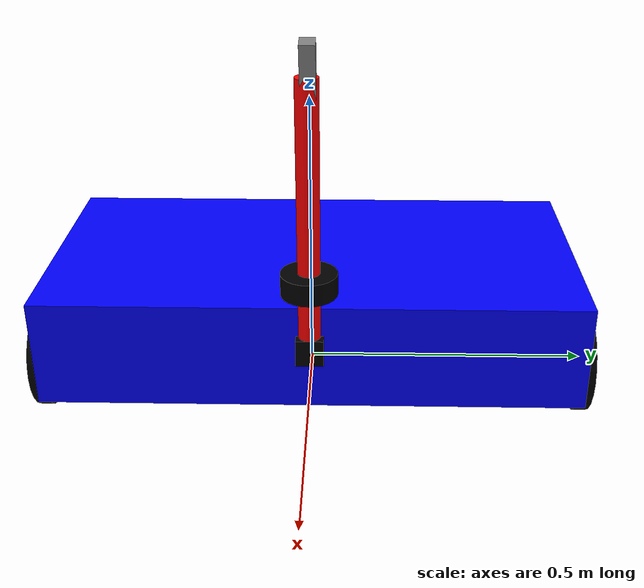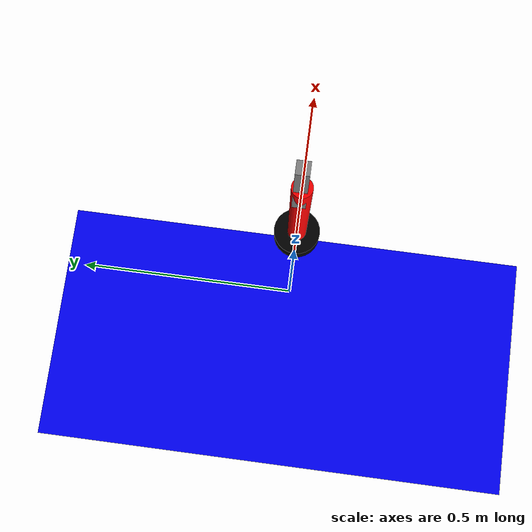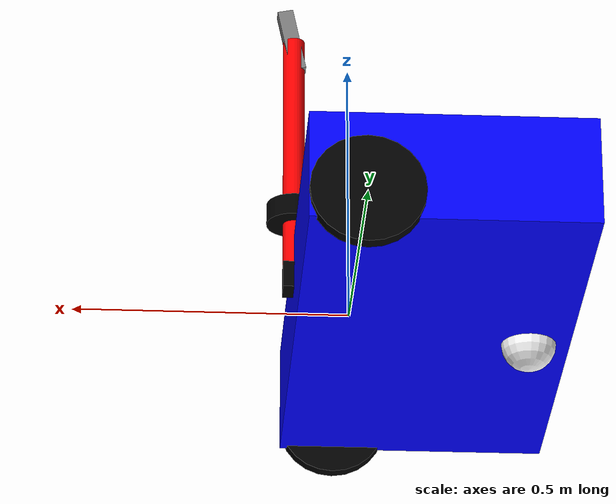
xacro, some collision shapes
<?xml version="1.0" ?>
<robot name='robot' xmlns:xacro="http://ros.org/wiki/xacro">

    <xacro:include filename="$(find robot_description)/urdf/gazebo.urdf.xacro" />
    <xacro:include filename="$(find robot_description)/urdf/lidar.urdf.xacro" />
    <xacro:include filename="$(find robot_description)/urdf/depth.urdf.xacro" />
    <xacro:include filename="$(find robot_description)/urdf/imu.urdf.xacro" />

    <!-- CONST -->

    <xacro:property name="chassis_length" value="0.5"/>
    <xacro:property name="chassis_width" value="1"/>
    <xacro:property name="chassis_height" value="0.2"/>

    <xacro:property name="wheel_radius" value="0.1"/>
    <xacro:property name="wheel_thickness" value="0.026"/>
    <xacro:property name="wheel_mass" value="0.05"/>
    <xacro:property name="wheel_offset_x" value="0.4"/>
    <xacro:property name="wheel_offset_y" value="${chassis_width/2}"/>
    <xacro:property name="wheel_offset_z" value="0.05"/>

    <xacro:property name="caster_wheel_radius" value="0.05"/>
    <xacro:property name="caster_wheel_mass" value="0.01"/>
    <xacro:property name="caster_wheel_offset_x" value="0.075"/>
    <xacro:property name="caster_wheel_offset_z" value="${wheel_offset_z - caster_wheel_radius}"/>
    <xacro:property name="mass" value="1.0"/>

    <xacro:property name="tail_radius" value="0.02"/>
    <xacro:property name="tail_lenght" value="0.5"/>
    <xacro:property name="tail_offset_x" value="${chassis_length}"/>
    <xacro:property name="tail_offset_z" value="${chassis_height+tail_lenght*0.42 -0.05}"/>
    <xacro:property name="tail_mass" value="0.001"/>

    <!-- MATERIALS -->

    <material name="white">
        <color rgba="1 1 1 1" />
    </material>

    <material name="green">
        <color rgba="0 1 0 1"/>
    </material>

    <material name="blue">
        <color rgba="0 0 1 1"/>
    </material>

    <material name="black">
        <color rgba="0 0 0 1"/>
    </material>

    <material name="red">
        <color rgba="1 0 0 1"/>
    </material>

    <!-- MODEL -->

    <link name="base_link">
    </link>

    <link name="base_footprint">
    </link>

    <joint name="base_footprint_joint" type="fixed">
        <parent link="base_link"/>
        <child link="base_footprint"/>
        <origin xyz="0 0 -0.138" rpy="0 0 0"/>
    </joint>

    <joint name="chassis_joint" type="fixed">
        <parent link="base_link"/>
        <child link="chassis"/>
        <origin xyz="${-wheel_offset_x} 0 ${-wheel_offset_z}"/>
    </joint>

    <link name='chassis'>

        <inertial>
            <origin xyz="${chassis_length/2} 0 ${chassis_height/2}" rpy="0 0 0"/>
            <mass value="${mass}" />
            <inertia ixx="${(1/12) * mass * (chassis_width*chassis_width+chassis_height*chassis_height)}" ixy="0.0" ixz="0.0"
                    iyy="${(1/12) * mass * (chassis_length*chassis_length+chassis_height*chassis_height)}" iyz="0.0"
                    izz="${(1/12) * mass * (chassis_length*chassis_length+chassis_width*chassis_width)}" />
        </inertial>
        <visual>
            <origin xyz="${chassis_length/2} 0 ${chassis_height/2}"/>
            <geometry>
                <box size="${chassis_length} ${chassis_width} ${chassis_height}"/>
            </geometry>
            <material name="blue"/>
        </visual>
        <collision>
            <origin xyz="${chassis_length/2} 0 ${chassis_height/2}"/>
            <geometry>
                <box size="${chassis_length} ${chassis_width} ${chassis_height}"/>
            </geometry>
        </collision>
    </link>

    <gazebo reference="chassis">
        <material>Gazebo/Blue</material>
    </gazebo>

    <joint name="left_wheel_joint" type="continuous">
        <parent link="base_link"/>
        <child link="left_wheel"/>
        <origin xyz="0 ${wheel_offset_y} 0" rpy="-${pi/2} 0 ${pi}" />
        <axis xyz="0 0 1"/>
    </joint>

    <link name="left_wheel">
        <visual>
            <geometry>
                <cylinder radius="${wheel_radius}" length="${wheel_thickness}"/>
            </geometry>
            <material name="black"/>
        </visual>
        <collision>
            <geometry>
                <cylinder radius="${wheel_radius}" length="${wheel_thickness}"/>
            </geometry>
        </collision>
        <inertial>
            <origin xyz="0 0 0" rpy="0 0 0"/>
            <mass value="${wheel_mass}" />
            <inertia ixx="${(1/12) * wheel_mass * (3*wheel_radius*wheel_radius + wheel_thickness*wheel_thickness)}" ixy="0.0" ixz="0.0"
                     iyy="${(1/12) * wheel_mass * (3*wheel_radius*wheel_radius + wheel_thickness*wheel_thickness)}" iyz="0.0"
                     izz="${(1/2) * wheel_mass * (wheel_radius*wheel_radius)}" />
        </inertial>
    </link>

    <gazebo reference="left_wheel">
        <material>Gazebo/Black</material>
    </gazebo>

    <joint name="right_wheel_joint" type="continuous">
        <parent link="base_link"/>
        <child link="right_wheel"/>
        <origin xyz="0 ${-wheel_offset_y} 0" rpy="${pi/2} 0 ${pi}" />
        <axis xyz="0 0 -1"/>
    </joint>

    <link name="right_wheel">
        <visual>
            <geometry>
                <cylinder radius="${wheel_radius}" length="${wheel_thickness}"/>
            </geometry>
            <material name="black"/>
        </visual>
        <collision>
            <geometry>
                <cylinder radius="${wheel_radius}" length="${wheel_thickness}"/>
            </geometry>
        </collision>
        <inertial>
            <origin xyz="0 0 0" rpy="0 0 0"/>
            <mass value="${wheel_mass}" />
            <inertia ixx="${(1/12) * wheel_mass * (3*wheel_radius*wheel_radius + wheel_thickness*wheel_thickness)}" ixy="0.0" ixz="0.0"
                     iyy="${(1/12) * wheel_mass * (3*wheel_radius*wheel_radius + wheel_thickness*wheel_thickness)}" iyz="0.0"
                     izz="${(1/2) * wheel_mass * (wheel_radius*wheel_radius)}" />
        </inertial>
    </link>

    <gazebo reference="right_wheel">
        <material>Gazebo/Black</material>
    </gazebo>

    <joint name="caster_wheel_joint" type="fixed">
        <parent link="chassis"/>
        <child link="caster_wheel"/>
        <origin xyz="${caster_wheel_offset_x} 0 ${caster_wheel_offset_z}"/>
    </joint>

    <link name="caster_wheel">
        <visual>
            <geometry>
                <sphere radius="${caster_wheel_radius}"/>
            </geometry>
            <material name="white"/>
        </visual>
        <collision>
            <geometry>
                <sphere radius="${caster_wheel_radius}"/>
            </geometry>
        </collision>
        <inertial>
            <origin xyz="0 0 0" rpy="0 0 0"/>
            <mass value="${caster_wheel_mass}" />
            <inertia ixx="${(2/5) * caster_wheel_mass * (caster_wheel_radius*caster_wheel_radius)}" ixy="0.0" ixz="0.0"
                     iyy="${(2/5) * caster_wheel_mass * (caster_wheel_radius*caster_wheel_radius)}" iyz="0.0"
                     izz="${(2/5) * caster_wheel_mass * (caster_wheel_radius*caster_wheel_radius)}" />
        </inertial>
    </link>

    <gazebo reference="caster_wheel">
        <material>Gazebo/White</material>
        <mu1 value="0.001"/>
        <mu2 value="0.001"/>
    </gazebo>

    <joint name="tail" type="fixed">
        <parent link="chassis"/>
        <child link="tail_link"/>
        <origin xyz="${tail_offset_x} 0 ${tail_offset_z}"/>
    </joint>

    <link name="tail_link">
        <visual>
            <geometry>
                <cylinder radius="${tail_radius}" length="${tail_lenght}"/>
            </geometry>
            <material name="red"/>
        </visual>
        <collision>
            <geometry>
                <cylinder radius="${tail_radius}" length="${tail_lenght}"/>
            </geometry>
        </collision>
        <inertial>
            <origin xyz="0 0 0" rpy="0 0 0"/>
            <mass value="${tail_mass}" />
            <inertia ixx="${(1/12) * tail_mass * (tail_radius*tail_radius+tail_lenght*tail_lenght)}" ixy="0.0" ixz="0.0"
                     iyy="${(1/12) * tail_mass * (tail_radius*tail_radius+tail_lenght*tail_lenght)}" iyz="0.0"
                     izz="${(1/12) * tail_mass * (tail_radius*tail_radius+tail_lenght*tail_lenght)}" />
        </inertial>
    </link>

    <gazebo reference="tail_link">
        <material>Gazebo/Red</material>
        <mu1 value="0.001"/>
        <mu2 value="0.001"/>
    </gazebo>

</robot>

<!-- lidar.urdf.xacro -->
<robot xmlns:xacro="http://www.ros.org/wiki/xacro">

    <joint name="laser_joint" type="fixed">
        <parent link="base_link"/>
        <child link="laser_frame"/>
        <origin xyz="0.1 0 0.2" rpy="0 0 0"/>
    </joint>

    <link name="laser_frame">
        <visual>
            <geometry>
                <cylinder radius="0.05" length="0.04"/>
            </geometry>
            <material name="black"/>
        </visual>
        <visual>
            <origin xyz="0 0 -0.05"/>
            <geometry>
                <cylinder radius="0.01" length="0.1"/>
            </geometry>
            <material name="black"/>
        </visual>
        <collision>
            <geometry>
                <cylinder radius="0.05" length="0.04"/>
            </geometry>
        </collision>
        <inertial>
            <origin xyz="0 0 0" rpy="0 0 0"/>
            <mass value="0.1" />
            <inertia ixx="${(1/12) * 0.1 * (3*0.05*0.05 + 0.04*0.04)}" ixy="0.0" ixz="0.0"
                     iyy="${(1/12) * 0.1 * (3*0.05*0.05 + 0.04*0.04)}" iyz="0.0"
                     izz="${(1/2) * 0.1 * (0.05*0.05)}" />
        </inertial>
    </link>

    <gazebo reference="laser_frame">
        <material>Gazebo/Black</material>

        <sensor name='laser_sensor_frame' type='gpu_lidar'>"
            <gz_frame_id>robot/laser_frame</gz_frame_id>
            <pose> 0 0 0 0 0 0 </pose>
            <visualize>true</visualize>
            <always_on>true</always_on>
            <update_rate>10</update_rate>
            <ray>
                <scan>
                    <horizontal>
                        <samples>360</samples>
                        <min_angle>-3.14</min_angle>
                        <max_angle>3.14</max_angle>
                    </horizontal>
                </scan>
                <range>
                    <min>0.3</min>
                    <max>12</max>
                </range>
                <noise>
                    <type>gaussian</type>
                    <mean>0.0</mean>
                    <stddev>0.007</stddev>
                </noise>
            </ray>
        </sensor>
    </gazebo>
</robot>

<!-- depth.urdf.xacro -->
<robot xmlns:xacro="http://www.ros.org/wiki/xacro">

    <xacro:property name="M_PI" value="3.1415926535897931" />

    <joint name="depth_joint" type="fixed">
        <parent link="base_link"/>
        <child link="depth_frame"/>
        <origin xyz="0.1 0.05 0.56" rpy="0 0.2 0"/>
    </joint>

    <material name="aluminum">
      <color rgba="0.5 0.5 0.5 1"/>
    </material>

    <link name="depth_frame">
        <visual>
            <origin xyz="0.00465 -0.0475 0" rpy="${M_PI/2} 0 ${M_PI/2}"/>
            <geometry>
                <mesh filename="file://$(find robot_description)/urdf/d455.stl" scale="0.001 0.001 0.001"/>
                <!--box size="0.026 0.124 0.029"/-->
            </geometry>
            <material name="aluminum"/>
        </visual>
        <collision>
            <origin xyz="0.00465 -0.0475 0" rpy="${M_PI/2} 0 ${M_PI/2}"/>
            <geometry>
                <box size="0.026 0.124 0.029"/>
            </geometry>
        </collision>
        <inertial>
            <origin xyz="0 0 0" rpy="0 0 0"/>
            <mass value="0.116" />
            <inertia ixx="${(1/12) * 0.116 * (0.026*0.026+0.029*0.029)}" ixy="0.0" ixz="0.0"
                     iyy="${(1/12) * 0.116 * (0.124*0.124+0.029*0.029)}" iyz="0.0"
                     izz="${(1/12) * 0.116 * (0.124*0.124+0.026*0.026)}" />
        </inertial>
    </link>

    <gazebo reference="depth_frame">
        <sensor name='depth_sensor_frame' type='depth_camera'>"
            <gz_frame_id>robot/depth_frame</gz_frame_id>
            <pose> 0 0 0 0 0 0 </pose>
            <always_on>true</always_on>
            <update_rate>10</update_rate>
            <camera>
                <horizontal_fov>1.51843645</horizontal_fov>
                <image>
                    <width>848</width>
                    <height>480</height>
                    <format>R_FLOAT32</format>
                </image>
                <clip>
                    <near>0.1</near>
                    <far>10</far>
                </clip>
                <lens>
                    <intrinsics>
                    <fx>421.61578369140625</fx>
                    <fy>421.61578369140625</fy>
                    <cx>422.2854309082031</cx>
                    <cy>236.57237243652344</cy>
                    <s>0</s>
                    </intrinsics>
                </lens>
                <noise>
                    <type>gaussian</type>
                    <mean>0.0</mean>
                    <stddev>0.007</stddev>
                </noise>
            </camera>
        </sensor>
        <sensor name="color_sensor_frame" type="camera">
            <gz_frame_id>robot/depth_frame</gz_frame_id>
            <pose>0 0 0 0 0 0</pose>
            <update_rate>30</update_rate>
            <always_on>true</always_on>
            <camera>
                <horizontal_fov>1.20427718</horizontal_fov>
                <image>
                    <width>848</width>
                    <height>480</height>
                </image>
                <clip>
                    <near>0.1</near>
                    <far>50</far>
                </clip>
                <lens>
                    <intrinsics>
                    <fx>615.9603271484375</fx>
                    <fy>616.227294921875</fy>
                    <cx>419.83026123046875</cx>
                    <cy>245.1431427001953</cy>
                    <s>0</s>
                    </intrinsics>
                </lens>
            </camera>
        </sensor>
    </gazebo>
</robot>

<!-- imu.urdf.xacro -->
<robot xmlns:xacro="http://www.ros.org/wiki/xacro" name="imu">

    <joint name="imu_sensor_joint" type="fixed">
        <origin xyz="0.11 0.0 0.07" rpy="0 0 0"/>
        <parent link="base_link"/>
        <child link="imu_sensor_link"/>
    </joint>

    <link name="imu_sensor_link">
        <inertial>
        <origin xyz="0 0 0" rpy="0 0 0"/>
        <mass value="0.02" />
        <inertia ixx="${(1/12) * 0.01 * (0.2*0.2+0.5*0.5)}" ixy="0.0" ixz="0.0"
                 iyy="${(1/12) * 0.01 * (0.2*0.2+0.5*0.5)}" iyz="0.0"
                 izz="${(1/12) * 0.01 * (0.2*0.2+0.5*0.5)}" />
    </inertial>
    <visual>
        <origin xyz="0 0 0"/>
        <geometry>
            <box size="0.02 0.05 0.05"/>
        </geometry>
        <material name="black"/>
    </visual>
    <collision>
        <origin xyz="0 0 0"/>
        <geometry>
            <box size="0.02 0.05 0.05"/>
        </geometry>
    </collision>
    </link>

    <gazebo reference="imu_sensor_link">
        <gravity>true</gravity>
        <sensor name='imu_sensor' type='imu'>
            <gz_frame_id>robot/imu_sensor_link</gz_frame_id>
            <always_on>true</always_on>
            <update_rate>10</update_rate>
            <visualize>true</visualize>
            <topic>imu</topic>
            <pose>0 0 0 0 0 0</pose>
        </sensor>
    </gazebo>

</robot>
